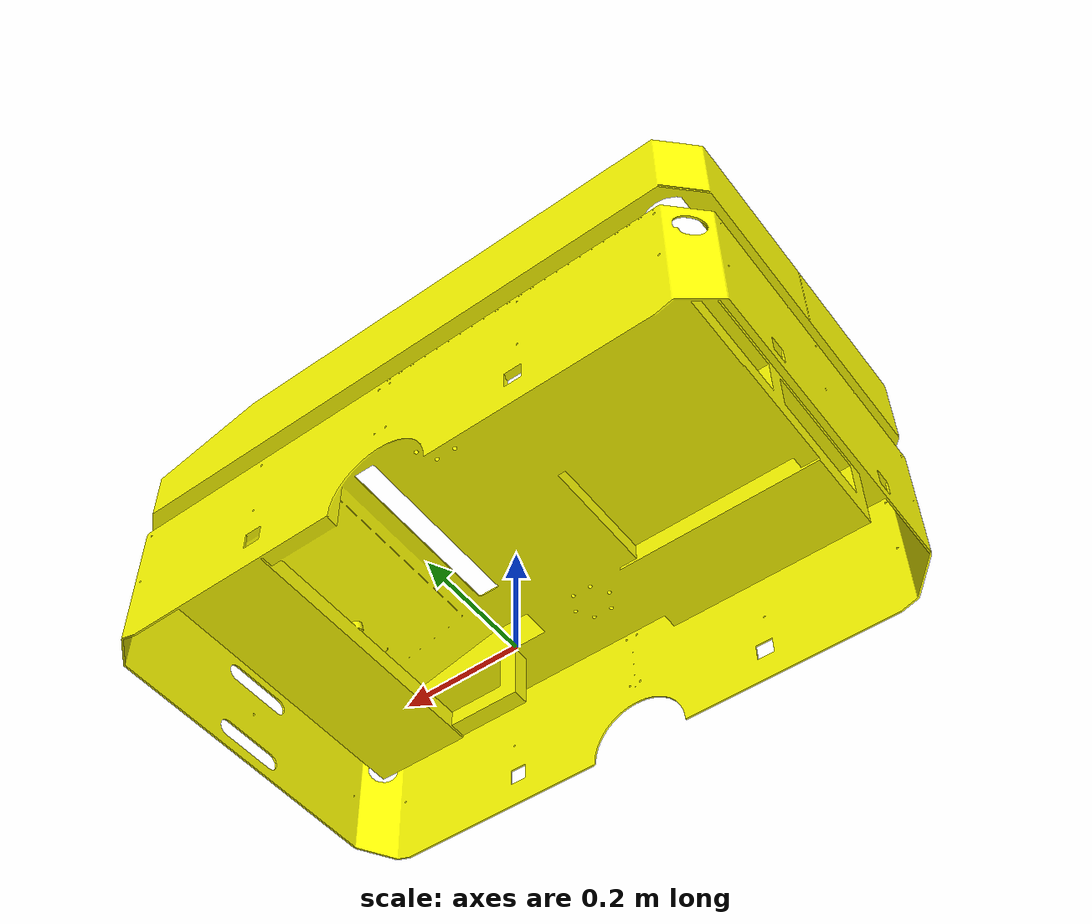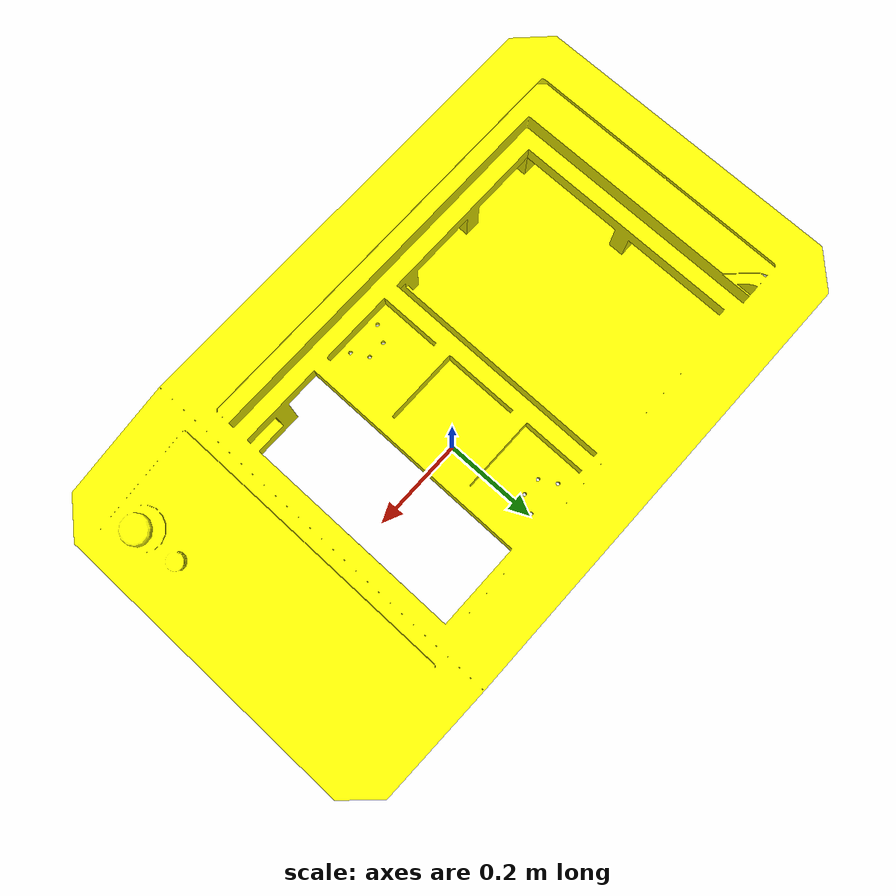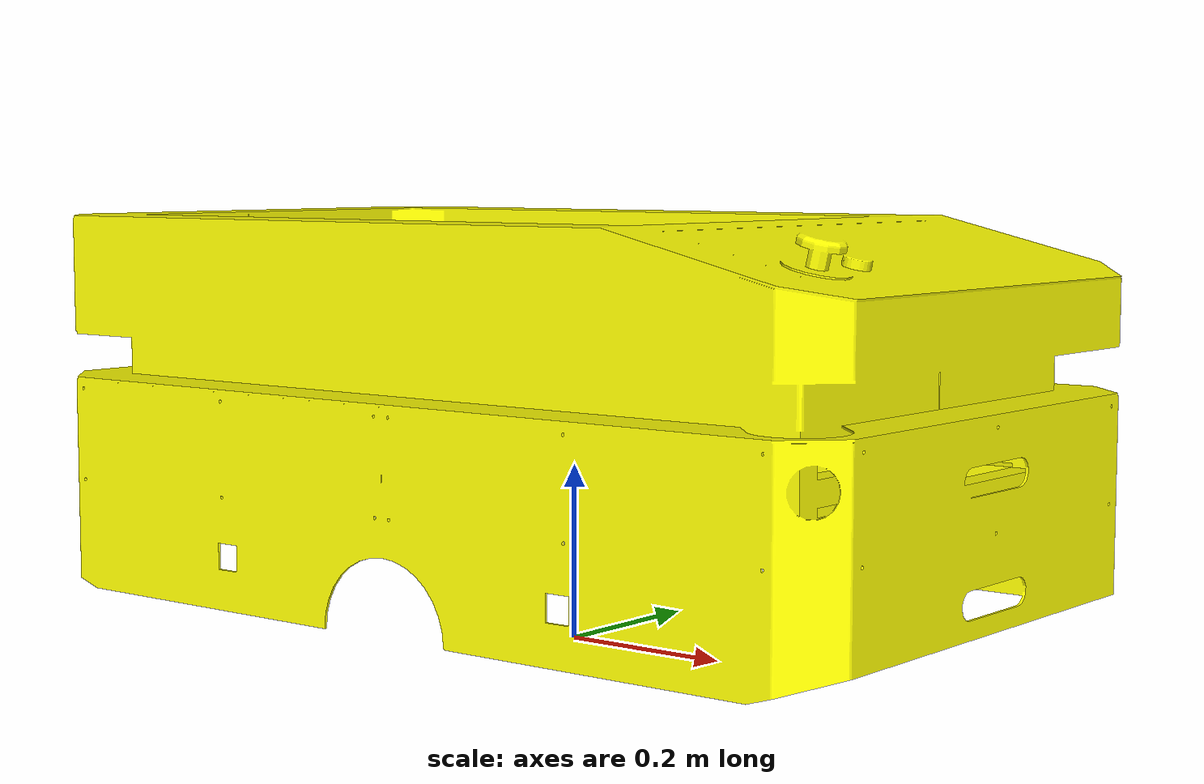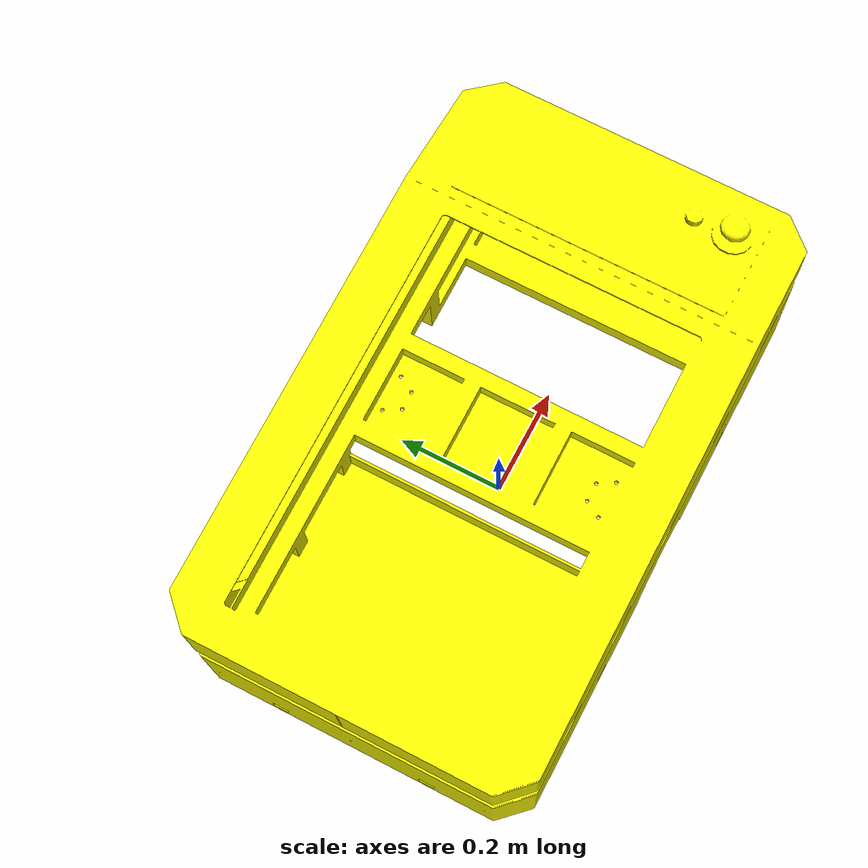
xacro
<?xml version="1.0"?>
<robot name="robot" xmlns:xacro="http://www.ros.org/wiki/xacro">

    <xacro:include filename="$(find robot_description)/urdf/v2/caster_wheel.xacro" />

    <link name="base_footprint"/>

    <!-- ==== BASE LINK ==== -->
    <link name="base_link">
        <pose>0 0 0 0 0 0</pose>
        <visual>
            <geometry>
                <mesh filename="package://robot_description/meshes/chassis_v3.stl" scale="1 1 1" />
            </geometry>
            <material name="yellow">
                <color rgba="1.0 1.0 0.0 1.0"/>
            </material>
            <origin xyz="0 0 0" rpy="0 0 0"/>
        </visual>
        <collision>
            <geometry>
                <mesh filename="package://robot_description/meshes/chassis_v3.stl" scale="1 1 1" />
            </geometry>
            <origin xyz="0 0 0" rpy="0 0 0"/>
        </collision>
        <inertial>
            <mass value="2"/>
            <inertia ixx="0.0395416666667" ixy="0" ixz="0" iyy="0.106208333333" iyz="0" izz="0.106208333333"/>
        </inertial>

    </link>

    <joint name="base_joint" type="fixed">
        <parent link="base_footprint"/>
        <child link="base_link"/>
        <origin xyz="0.0 0.0 0.05" rpy="0.0 0.0 0.0"/>
        <axis xyz="0.0 0.0 0.0" />
    </joint>

</robot>
